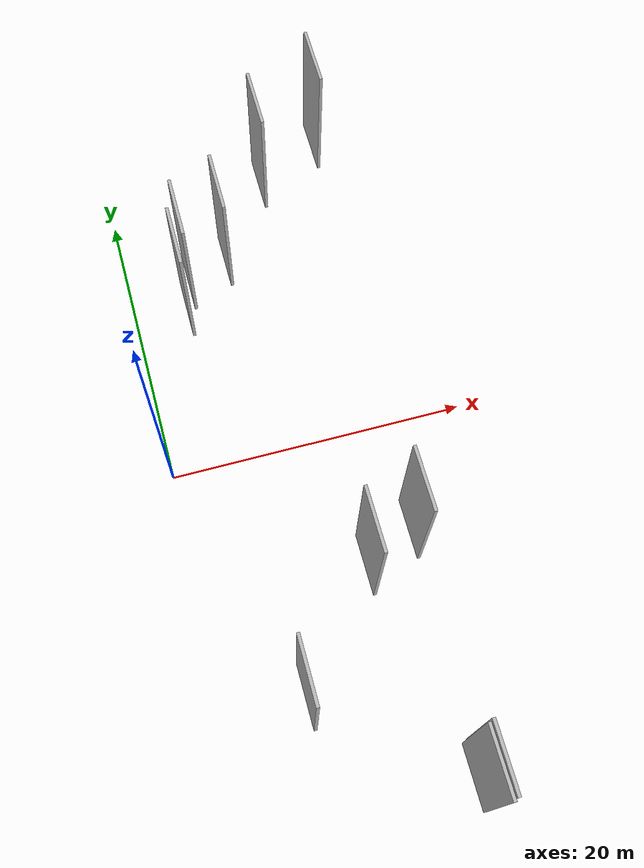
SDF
<sdf version="1.6">
 <world name="default">
  <scene>
   <sky><clouds><speed>12</speed></clouds></sky>
   <ambient>0.4 0.4 0.4 1</ambient>
   <background>0.7 0.7 0.7 1</background>
   <shadows>1</shadows>
  </scene>
  <gravity>0 0 -9.8066</gravity>
  <magnetic_field>6e-06 2.3e-05 -4.2e-05</magnetic_field>
  <physics default="0" name="default_physics" type="ode">
   <ode>
    <solver>
     <type>quick</type>
     <iters>10</iters>
     <sor>1.0</sor>
     <use_dynamic_moi_rescaling>0</use_dynamic_moi_rescaling>
    </solver>
    <constraints>
     <cfm>0</cfm>
     <erp>0.2</erp>
     <contact_max_correcting_vel>100</contact_max_correcting_vel>
     <contact_surface_layer>0.001</contact_surface_layer>
    </constraints>
   </ode>
   <max_step_size>0.004</max_step_size>
   <real_time_factor>1</real_time_factor>
   <real_time_update_rate>250</real_time_update_rate>
  </physics>
  <light name="sun" type="directional">
   <pose>0 0 10 0 0 0</pose>
   <diffuse>0.8 0.8 0.8 1</diffuse>
   <specular>0.2 0.2 0.2 1</specular>
   <attenuation>
    <range>1000</range>
    <constant>0.9</constant>
    <linear>0.01</linear>
    <quadratic>0.001</quadratic>
   </attenuation>
   <direction>-0.5 0.1 -0.9</direction>
  </light>
  <model name="grey_wall_1">
   <static>1</static>
   <pose>13.8158 -8.0979 2.5 0.000000 0.000000 1.570796</pose>
   <link name="link">
    <pose>0 0 5.00 0 0 0</pose>
    <collision name="collision"><geometry><box><size>4.00 0.2 10.00</size></box></geometry></collision>
    <visual name="visual">
     <cast_shadows>0</cast_shadows>
     <geometry><box><size>4.00 0.2 10.00</size></box></geometry>
     <material>
      <script>
       <uri>model://HANNAS_wall/materials/scripts</uri>
       <uri>model://HANNAS_wall/materials/textures</uri>
       <name>vrc/HANNAS_wall</name>
      </script>
     </material>
    </visual>
   </link>
  </model>
  <model name="grey_wall_2">
   <static>1</static>
   <pose>4.2617 12.7220 2.5 0.000000 0.000000 1.570796</pose>
   <link name="link">
    <pose>0 0 5.00 0 0 0</pose>
    <collision name="collision"><geometry><box><size>4.00 0.2 10.00</size></box></geometry></collision>
    <visual name="visual">
     <cast_shadows>0</cast_shadows>
     <geometry><box><size>4.00 0.2 10.00</size></box></geometry>
     <material>
      <script>
       <uri>model://HANNAS_wall/materials/scripts</uri>
       <uri>model://HANNAS_wall/materials/textures</uri>
       <name>vrc/HANNAS_wall</name>
      </script>
     </material>
    </visual>
   </link>
  </model>
  <model name="grey_wall_3">
   <static>1</static>
   <pose>13.0313 -23.4603 2.5 0.000000 0.000000 1.570796</pose>
   <link name="link">
    <pose>0 0 5.00 0 0 0</pose>
    <collision name="collision"><geometry><box><size>4.00 0.2 10.00</size></box></geometry></collision>
    <visual name="visual">
     <cast_shadows>0</cast_shadows>
     <geometry><box><size>4.00 0.2 10.00</size></box></geometry>
     <material>
      <script>
       <uri>model://HANNAS_wall/materials/scripts</uri>
       <uri>model://HANNAS_wall/materials/textures</uri>
       <name>vrc/HANNAS_wall</name>
      </script>
     </material>
    </visual>
   </link>
  </model>
  <model name="grey_wall_4">
   <static>1</static>
   <pose>13.3111 -23.3102 2.5 0.000000 0.000000 1.570796</pose>
   <link name="link">
    <pose>0 0 5.00 0 0 0</pose>
    <collision name="collision"><geometry><box><size>4.00 0.2 10.00</size></box></geometry></collision>
    <visual name="visual">
     <cast_shadows>0</cast_shadows>
     <geometry><box><size>4.00 0.2 10.00</size></box></geometry>
     <material>
      <script>
       <uri>model://HANNAS_wall/materials/scripts</uri>
       <uri>model://HANNAS_wall/materials/textures</uri>
       <name>vrc/HANNAS_wall</name>
      </script>
     </material>
    </visual>
   </link>
  </model>
  <model name="grey_wall_5">
   <static>1</static>
   <pose>15.4837 21.7330 2.5 0.000000 0.000000 1.570796</pose>
   <link name="link">
    <pose>0 0 5.00 0 0 0</pose>
    <collision name="collision"><geometry><box><size>4.00 0.2 10.00</size></box></geometry></collision>
    <visual name="visual">
     <cast_shadows>0</cast_shadows>
     <geometry><box><size>4.00 0.2 10.00</size></box></geometry>
     <material>
      <script>
       <uri>model://HANNAS_wall/materials/scripts</uri>
       <uri>model://HANNAS_wall/materials/textures</uri>
       <name>vrc/HANNAS_wall</name>
      </script>
     </material>
    </visual>
   </link>
  </model>
  <model name="grey_wall_6">
   <static>1</static>
   <pose>10.9708 19.4344 2.5 0.000000 0.000000 1.570796</pose>
   <link name="link">
    <pose>0 0 5.00 0 0 0</pose>
    <collision name="collision"><geometry><box><size>4.00 0.2 10.00</size></box></geometry></collision>
    <visual name="visual">
     <cast_shadows>0</cast_shadows>
     <geometry><box><size>4.00 0.2 10.00</size></box></geometry>
     <material>
      <script>
       <uri>model://HANNAS_wall/materials/scripts</uri>
       <uri>model://HANNAS_wall/materials/textures</uri>
       <name>vrc/HANNAS_wall</name>
      </script>
     </material>
    </visual>
   </link>
  </model>
  <model name="grey_wall_7">
   <static>1</static>
   <pose>4.7727 -16.5362 2.5 0.000000 0.000000 1.570796</pose>
   <link name="link">
    <pose>0 0 5.00 0 0 0</pose>
    <collision name="collision"><geometry><box><size>4.00 0.2 10.00</size></box></geometry></collision>
    <visual name="visual">
     <cast_shadows>0</cast_shadows>
     <geometry><box><size>4.00 0.2 10.00</size></box></geometry>
     <material>
      <script>
       <uri>model://HANNAS_wall/materials/scripts</uri>
       <uri>model://HANNAS_wall/materials/textures</uri>
       <name>vrc/HANNAS_wall</name>
      </script>
     </material>
    </visual>
   </link>
  </model>
  <model name="grey_wall_8">
   <static>1</static>
   <pose>3.6926 10.7734 2.5 0.000000 0.000000 1.570796</pose>
   <link name="link">
    <pose>0 0 5.00 0 0 0</pose>
    <collision name="collision"><geometry><box><size>4.00 0.2 10.00</size></box></geometry></collision>
    <visual name="visual">
     <cast_shadows>0</cast_shadows>
     <geometry><box><size>4.00 0.2 10.00</size></box></geometry>
     <material>
      <script>
       <uri>model://HANNAS_wall/materials/scripts</uri>
       <uri>model://HANNAS_wall/materials/textures</uri>
       <name>vrc/HANNAS_wall</name>
      </script>
     </material>
    </visual>
   </link>
  </model>
  <model name="grey_wall_9">
   <static>1</static>
   <pose>7.1060 13.8796 2.5 0.000000 0.000000 1.570796</pose>
   <link name="link">
    <pose>0 0 5.00 0 0 0</pose>
    <collision name="collision"><geometry><box><size>4.00 0.2 10.00</size></box></geometry></collision>
    <visual name="visual">
     <cast_shadows>0</cast_shadows>
     <geometry><box><size>4.00 0.2 10.00</size></box></geometry>
     <material>
      <script>
       <uri>model://HANNAS_wall/materials/scripts</uri>
       <uri>model://HANNAS_wall/materials/textures</uri>
       <name>vrc/HANNAS_wall</name>
      </script>
     </material>
    </visual>
   </link>
  </model>
  <model name="grey_wall_10">
   <static>1</static>
   <pose>10.4863 -9.6363 2.5 0.000000 0.000000 1.570796</pose>
   <link name="link">
    <pose>0 0 5.00 0 0 0</pose>
    <collision name="collision"><geometry><box><size>4.00 0.2 10.00</size></box></geometry></collision>
    <visual name="visual">
     <cast_shadows>0</cast_shadows>
     <geometry><box><size>4.00 0.2 10.00</size></box></geometry>
     <material>
      <script>
       <uri>model://HANNAS_wall/materials/scripts</uri>
       <uri>model://HANNAS_wall/materials/textures</uri>
       <name>vrc/HANNAS_wall</name>
      </script>
     </material>
    </visual>
   </link>
  </model>
 </world>
</sdf>
